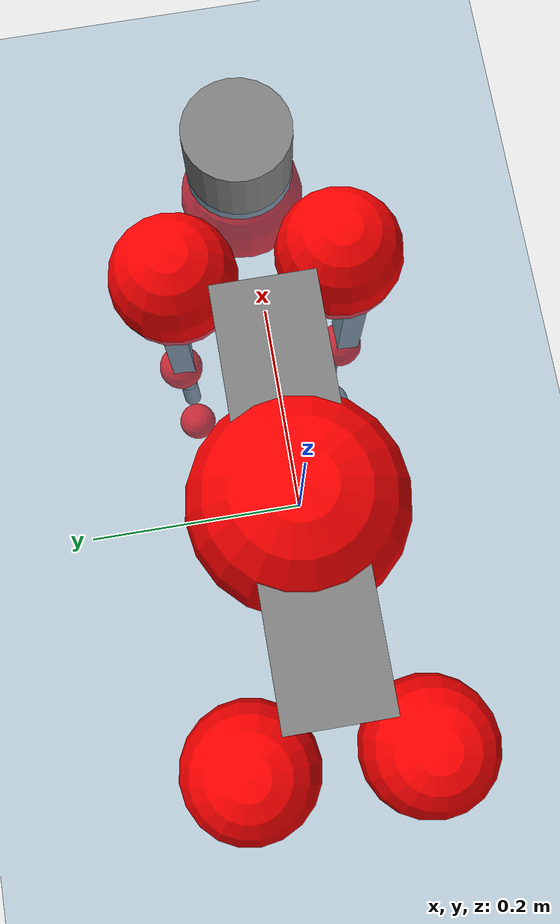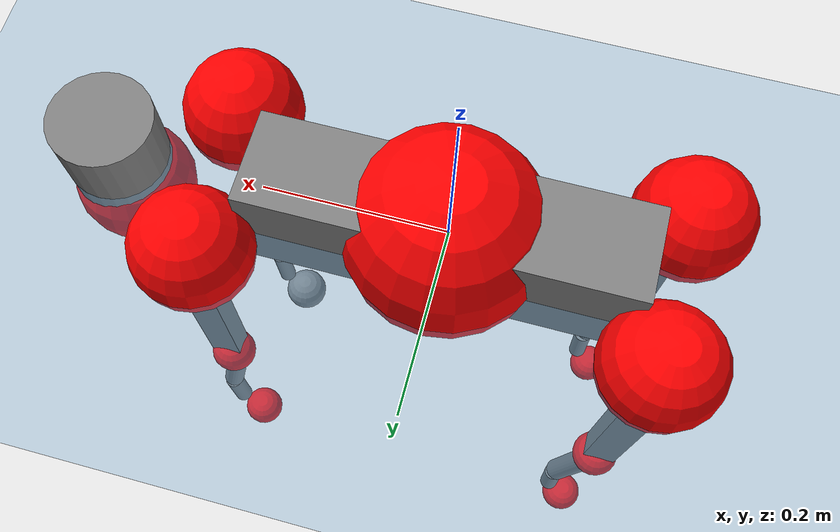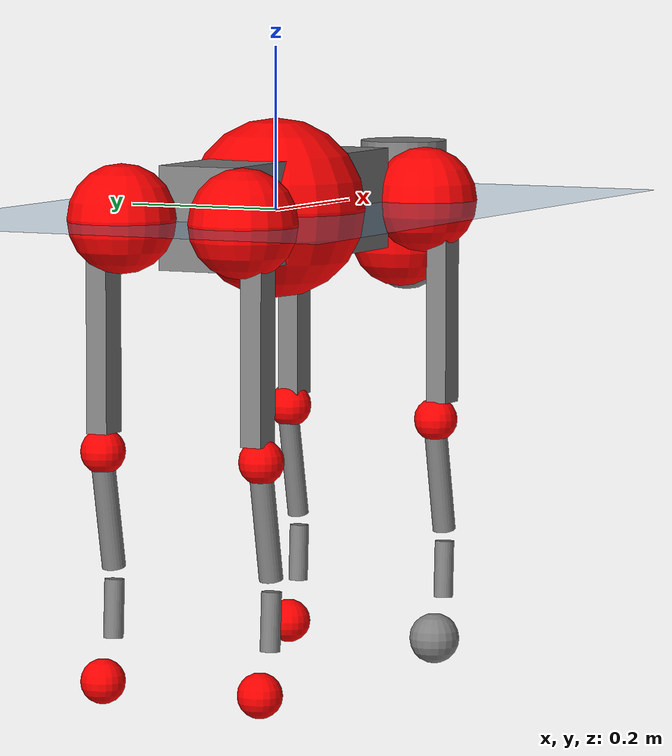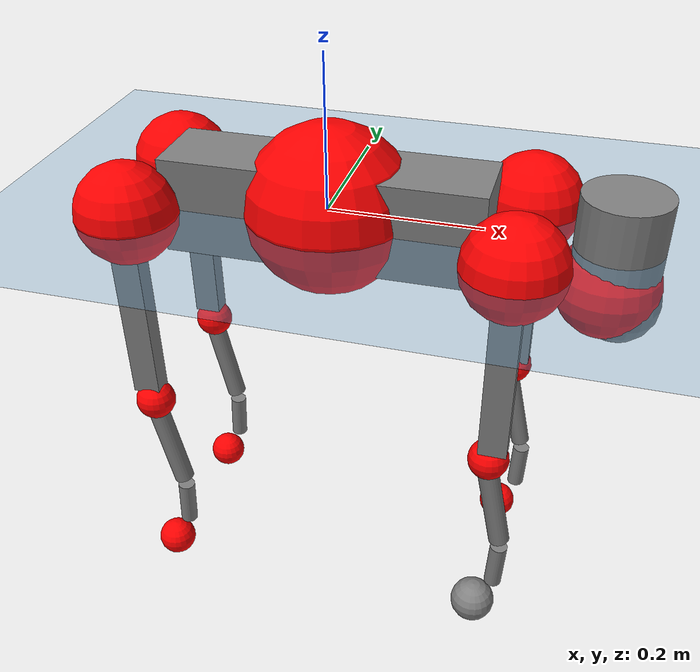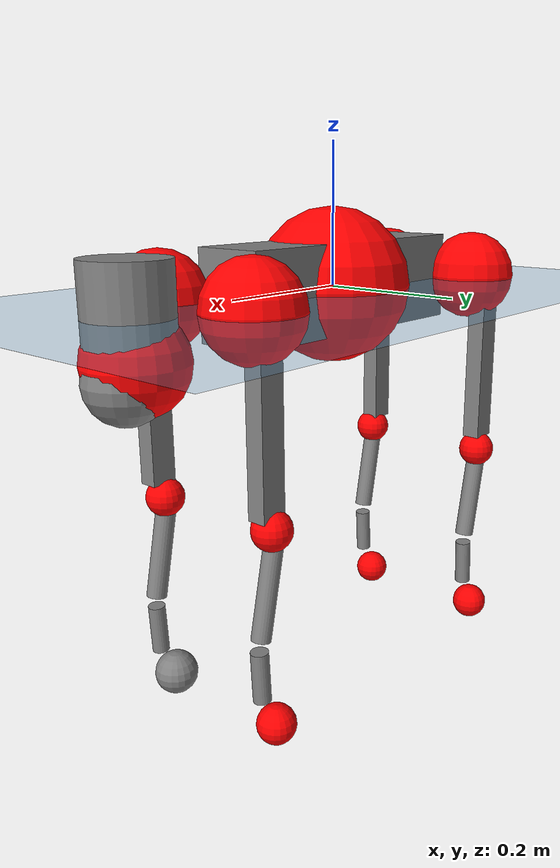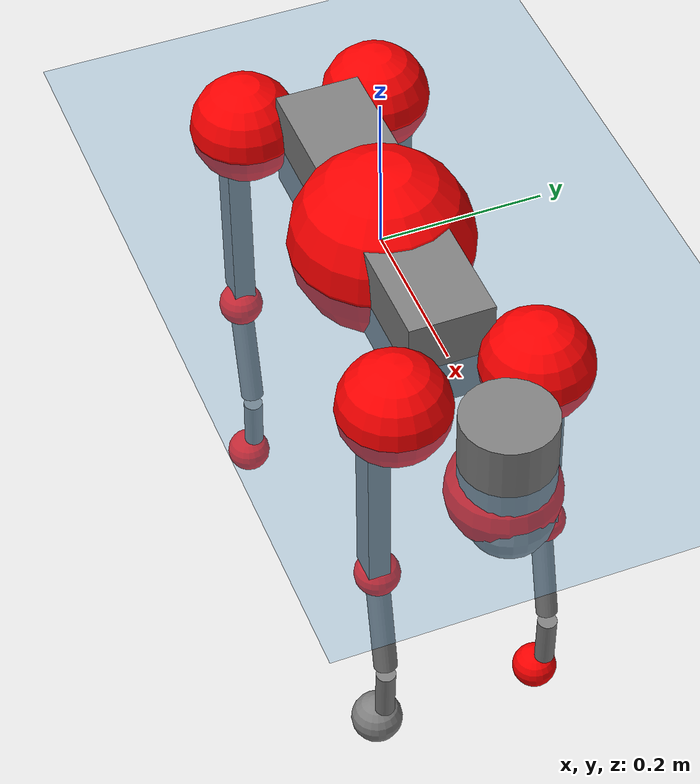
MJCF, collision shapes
<mujoco model="go2">
  <compiler angle="radian" assetdir="assets" balanceinertia="true" inertiafromgeom="false"/>

  <option timestep="0.005" density="1.2" viscosity="2e-05"/>

  <size nkey="1"/>

  <visual>
    <quality shadowsize="8192"/>
    <map shadowclip="0.5"/>
  </visual>

  <default>
    <default class="/">
      <geom contype="0" conaffinity="0" group="1" solref="-1000 -80"/>
      <site size="0.01 0.005 0.005" group="5"/>
      <general forcelimited="true" biastype="affine" gainprm="20" biasprm="0 -20 -0.5"/>
      <default class="go2">
        <joint armature="0.01" damping="0.01" frictionloss="0.2"/>
        <geom condim="1" margin="0.001"/>
        <default class="visual">
          <geom type="mesh" group="2"/>
        </default>
        <default class="collision">
          <geom group="3"/>
          <default class="foot">
            <geom size="0.022 0 0" condim="6" priority="1" friction="0.8 0.02 0.01" solimp="0.015 1 0.022"/>
          </default>
        </default>
        <default class="reward_collision_sphere">
          <geom group="5" rgba="1 0 0 1"/>
        </default>
      </default>
    </default>
  </default>

  <asset>
    <texture type="skybox" colorspace="auto" name="//unnamed_texture_0" builtin="gradient" rgb1="0.95 0.95 0.95" rgb2="0.95 0.95 0.95" width="100" height="600"/>
    <texture type="2d" colorspace="auto" name="texplane" builtin="checker" rgb1="0.345 0.575 0.748" rgb2="0.345 0.575 0.748" markrgb="1 1 1" width="512" height="512"/>
    <material name="MatPlane" class="/" texture="texplane" texuniform="true" texrepeat="2 2" specular="0.9"/>
    <material name="metal" class="/" rgba="0.9 0.95 0.95 1"/>
    <material name="black" class="/" rgba="0 0 0 1"/>
    <material name="white" class="/"/>
    <material name="gray" class="/" rgba="0.671705 0.692426 0.77427 1"/>
    <mesh name="base_0" class="/" file="base_0.obj"/>
    <mesh name="base_1" class="/" file="base_1.obj"/>
    <mesh name="base_2" class="/" file="base_2.obj"/>
    <mesh name="base_3" class="/" file="base_3.obj"/>
    <mesh name="base_4" class="/" file="base_4.obj"/>
    <mesh name="hip_0" class="/" file="hip_0.obj"/>
    <mesh name="hip_1" class="/" file="hip_1.obj"/>
    <mesh name="thigh_0" class="/" file="thigh_0.obj"/>
    <mesh name="thigh_1" class="/" file="thigh_1.obj"/>
    <mesh name="thigh_mirror_0" class="/" file="thigh_mirror_0.obj"/>
    <mesh name="thigh_mirror_1" class="/" file="thigh_mirror_1.obj"/>
    <mesh name="calf_0" class="/" file="calf_0.obj"/>
    <mesh name="calf_1" class="/" file="calf_1.obj"/>
    <mesh name="calf_mirror_0" class="/" file="calf_mirror_0.obj"/>
    <mesh name="calf_mirror_1" class="/" file="calf_mirror_1.obj"/>
    <mesh name="foot" class="/" file="foot.obj"/>
  </asset>

  <worldbody>
    <geom name="floor" class="/" size="100 100 0.125" type="plane" group="0" material="MatPlane"/>
    <light name="toplight_shadow" class="/" pos="0 0 5" dir="0.0990148 0.0990148 -0.990148" type="directional" ambient="0.04 0.04 0.04" diffuse="0.55 0.55 0.55" specular="0.12 0.12 0.12"/>
    <light name="toplight_fill" class="/" pos="0 0 5" dir="0.0990148 0.0990148 -0.990148" type="directional" castshadow="false" ambient="0.04 0.04 0.04" diffuse="0.3 0.3 0.3" specular="0.08 0.08 0.08"/>
    <body name="trunk" childclass="go2" pos="0.00213168 0.000726772 0.00271453" quat="0.999999 0.000338744 -0.00106402 -1.80413e-05">
      <inertial pos="0.0303879 0.0052539 -0.00695725" quat="-0.00157867 0.710455 -0.00256767 0.703737" mass="9.44398" diaginertia="0.321547 0.019295 0.0855236"/>
      <joint name="//unnamed_joint_0" type="free" armature="0" damping="0" frictionloss="0"/>
      <geom name="//unnamed_geom_1" class="visual" material="black" mesh="base_0"/>
      <geom name="//unnamed_geom_2" class="visual" material="black" mesh="base_1"/>
      <geom name="//unnamed_geom_3" class="visual" material="black" mesh="base_2"/>
      <geom name="//unnamed_geom_4" class="visual" material="white" mesh="base_3"/>
      <geom name="//unnamed_geom_5" class="visual" material="gray" mesh="base_4"/>
      <geom name="trunk_1" class="collision" size="0.207261 0.0515123 0.0628064" type="box"/>
      <geom name="trunk_2" class="collision" size="0.0550933 0.049584" pos="0.360098 0 0.0130927" type="cylinder"/>
      <geom name="trunk_3" class="collision" size="0.0517877" pos="0.370206 0 -0.0785563"/>
      <geom name="//unnamed_geom_9" class="reward_collision_sphere" size="0.110187"/>
      <geom name="//unnamed_geom_10" class="reward_collision_sphere" size="0.066112" pos="0.35378 0 -0.0589172"/>
      <site name="imu" pos="0.00409437 -0.0113063 0.0294403" size="0.0110187"/>
      <camera name="track" pos="0 -1.46565 0" quat="0.707107 0.707107 0 0" mode="trackcom"/>
      <camera name="ego_camera" pos="0.394212 0 0.0589172" quat="-0.5 -0.5 0.5 0.5"/>
      <body name="FL_hip" pos="0.246105 0.0337418 -0.00222527" quat="1 -4.39282e-06 -0.000488718 -0.000147061">
        <inertial pos="-0.0122416 0.00223566 -0.00266093" quat="0.496679 0.495179 0.503342 0.504732" mass="0.953994" diaginertia="0.00300754 0.000123014 0.00183738"/>
        <joint name="FL_hip_joint" pos="0 0 0" axis="0.999843 -0.0118534 -0.0131964" range="-1.09502 1.02416" armature="0.00743905" damping="0.0419052" frictionloss="0.196773"/>
        <geom name="//unnamed_geom_11" class="visual" material="metal" mesh="hip_0"/>
        <geom name="//unnamed_geom_12" class="visual" material="gray" mesh="hip_1"/>
        <geom name="//unnamed_geom_13" class="collision" size="0.0506859 0.0220373" pos="0 0.0586261 0" quat="0.707107 0.707107 0 0" type="cylinder"/>
        <geom name="//unnamed_geom_14" class="reward_collision_sphere" size="0.066112" pos="0 0.0512978 0"/>
        <body name="FL_thigh" pos="-0.000361879 0.0658674 -2.03931e-05" quat="0.999998 0.00111247 -0.0016316 -7.72304e-05">
          <inertial pos="-0.00460599 -0.0164937 -0.0484852" quat="0.831109 0.0787702 -0.0240035 0.549979" mass="1.54294" diaginertia="0.0210243 0.00126107 0.00336779"/>
          <joint name="FL_thigh_joint" pos="0 0 0" axis="0.0304275 0.999365 0.0185462" stiffness="0.00745218" range="-1.60388 3.54037" armature="0.0121433" damping="0.00343106" frictionloss="0.277626"/>
          <geom name="//unnamed_geom_15" class="visual" material="metal" mesh="thigh_0"/>
          <geom name="//unnamed_geom_16" class="visual" material="gray" mesh="thigh_1"/>
          <geom name="//unnamed_geom_17" class="collision" size="0.117349 0.0134979 0.0187317" pos="0 0 -0.139437" quat="0.707107 0 0.707107 0" type="box"/>
          <body name="FL_calf" pos="-0.00419474 0.00451877 -0.271658" quat="0.999998 0.000963049 -0.00148643 0.00108162">
            <inertial pos="0.00607258 -0.00109973 -0.186735" quat="0.714318 0.00499449 0.0009861 0.699802" mass="0.321005" diaginertia="0.00488109 0.000311743 0.000202121"/>
            <joint name="FL_calf_joint" pos="0 0 0" axis="-0.062049 0.996945 0.0474307" range="-2.67651 -0.828045" armature="0.0107072" damping="0.032748" frictionloss="0.198376"/>
            <geom name="//unnamed_geom_18" class="visual" material="gray" mesh="calf_0"/>
            <geom name="//unnamed_geom_19" class="visual" material="black" mesh="calf_1"/>
            <geom name="FL_calf0" class="collision" size="0.0132224 0.066112" pos="0.010108 0 -0.0785563" quat="0.994493 0 -0.104807 0" type="cylinder"/>
            <geom name="//unnamed_geom_21" class="collision" size="0.0121205 0.0358107" pos="0.02527 0 -0.193772" quat="0.999688 0 0.0249974 0" type="cylinder"/>
            <geom name="//unnamed_geom_22" class="visual" pos="0 0 -0.278875" quat="1 0 0 0" material="black" mesh="foot"/>
            <geom name="FL_foot" class="foot" size="0.0188667" pos="-0.002527 0 -0.278875"/>
            <geom name="//unnamed_geom_24" class="reward_collision_sphere" size="0.0275467"/>
            <geom name="//unnamed_geom_25" class="reward_collision_sphere" size="0.0275467" pos="-0.002527 0 -0.278875"/>
            <site name="FL_foot" class="foot" pos="-0.002527 0 -0.278875" size="0.0110187"/>
          </body>
        </body>
      </body>
      <body name="FR_hip" pos="0.246571 -0.0329626 -0.00347692" quat="1 -0.000146881 -7.09035e-06 3.71666e-05">
        <inertial pos="-0.0118603 -0.00335595 0.00161764" quat="0.500227 0.505817 0.497579 0.496324" mass="0.866487" diaginertia="0.00278092 0.000120963 0.00179013"/>
        <joint name="FR_hip_joint" pos="0 0 0" axis="0.999999 0.000536161 0.00102313" range="-0.936067 1.09032" armature="0.0136846" damping="0" frictionloss="0.278968"/>
        <geom name="//unnamed_geom_26" class="visual" pos="0 -5.02176e-09 -2.15394e-07" quat="4.63268e-05 1 0 0" material="metal" mesh="hip_0"/>
        <geom name="//unnamed_geom_27" class="visual" pos="0 -8.14088e-09 5.32751e-07" quat="4.63268e-05 1 0 0" material="gray" mesh="hip_1"/>
        <geom name="//unnamed_geom_28" class="collision" size="0.0506859 0.0220373" pos="0 -0.0586261 0" quat="0.707107 0.707107 0 0" type="cylinder"/>
        <geom name="//unnamed_geom_29" class="reward_collision_sphere" size="0.066112" pos="0 -0.0512978 0"/>
        <body name="FR_thigh" pos="-1.32167e-05 -0.0761488 0.00106797" quat="1 0.000557355 0.000326217 0.000366493">
          <inertial pos="-0.0045436 0.0185354 -0.0449853" quat="0.539483 -0.0145887 0.0667439 0.83922" mass="1.73516" diaginertia="0.0205503 0.00125692 0.00351825"/>
          <joint name="FR_thigh_joint" pos="0 0 0" axis="-0.0133352 -0.9998 -0.0149206" stiffness="0.00710683" range="-3.63279 1.5228" armature="0.0109361" damping="0.0240231" frictionloss="0.129325"/>
          <geom name="//unnamed_geom_30" class="visual" material="metal" mesh="thigh_mirror_0"/>
          <geom name="//unnamed_geom_31" class="visual" material="gray" mesh="thigh_mirror_1"/>
          <geom name="//unnamed_geom_32" class="collision" size="0.117349 0.0134979 0.0187317" pos="0 0 -0.139437" quat="0.707107 0 0.707107 0" type="box"/>
          <body name="FR_calf" pos="-0.00523143 0.00616127 -0.278632" quat="1 -0.000778216 0.00042899 -4.05664e-05">
            <inertial pos="0.00820873 -0.00106586 -0.191125" quat="0.706045 -0.00833583 0.00641084 0.708089" mass="0.316502" diaginertia="0.00526203 0.000327654 0.000210741"/>
            <joint name="FR_calf_joint" pos="0 0 0" axis="0.00119487 -0.999943 0.0106269" stiffness="0.0079321" range="0.868905 2.68088" armature="0.0104072" damping="0.0168774" frictionloss="0.293986"/>
            <geom name="//unnamed_geom_33" class="visual" material="gray" mesh="calf_mirror_0"/>
            <geom name="//unnamed_geom_34" class="visual" material="black" mesh="calf_mirror_1"/>
            <geom name="FR_calf0" class="collision" size="0.0143243 0.066112" pos="0.012635 0 -0.0785563" quat="0.995004 0 -0.0998334 0" type="cylinder"/>
            <geom name="//unnamed_geom_36" class="collision" size="0.0121205 0.0358107" pos="0.02527 0 -0.193772" quat="0.999688 0 0.0249974 0" type="cylinder"/>
            <geom name="//unnamed_geom_37" class="visual" pos="0 0 -0.278875" quat="1 0 0 0" material="black" mesh="foot"/>
            <geom name="FR_foot" class="foot" size="0.0316606" pos="-0.002527 0 -0.278875"/>
            <geom name="//unnamed_geom_39" class="reward_collision_sphere" size="0.0275467"/>
            <geom name="//unnamed_geom_40" class="reward_collision_sphere" size="0.0275467" pos="-0.002527 0 -0.278875"/>
            <site name="FR_foot" class="foot" pos="-0.002527 0 -0.278875" size="0.0110187"/>
          </body>
        </body>
      </body>
      <body name="RL_hip" pos="-0.237352 0.0340832 0.000149248" quat="1 -0.000462399 0.000290788 -0.000578855">
        <inertial pos="0.00662206 -0.00428447 0.00215724" quat="0.50556 0.502965 0.489954 0.501379" mass="0.91978" diaginertia="0.00298041 0.000121997 0.00208161"/>
        <joint name="RL_hip_joint" pos="0 0 0" axis="-0.999998 0.000944081 -0.00192791" range="-1.03373 1.21187" armature="0.0142961" damping="0.0133117" frictionloss="0.203882"/>
        <geom name="//unnamed_geom_41" class="visual" pos="3.98733e-10 0 7.81609e-08" quat="4.63268e-05 0 1 0" material="metal" mesh="hip_0"/>
        <geom name="//unnamed_geom_42" class="visual" pos="6.46394e-10 0 6.93176e-08" quat="4.63268e-05 0 1 0" material="gray" mesh="hip_1"/>
        <geom name="//unnamed_geom_43" class="collision" size="0.0506859 0.0220373" pos="0 0.0586261 0" quat="0.707107 0.707107 0 0" type="cylinder"/>
        <geom name="//unnamed_geom_44" class="reward_collision_sphere" size="0.066112" pos="0 0.0512978 0"/>
        <body name="RL_thigh" pos="0.00205946 0.0779776 -0.00167464" quat="1 -2.25337e-06 1.59681e-07 -4.81793e-06">
          <inertial pos="-0.00516546 -0.020462 -0.0450216" quat="0.824485 0.0815614 -0.0178081 0.559692" mass="1.54882" diaginertia="0.0193519 0.0012665 0.0034508"/>
          <joint name="RL_thigh_joint" pos="0 0 0" axis="-0.0158471 0.999713 0.0179469" range="-0.509664 4.48909" armature="0.0113814" damping="0.00988326" frictionloss="0.229424"/>
          <geom name="//unnamed_geom_45" class="visual" material="metal" mesh="thigh_0"/>
          <geom name="//unnamed_geom_46" class="visual" material="gray" mesh="thigh_1"/>
          <geom name="//unnamed_geom_47" class="collision" size="0.117349 0.0134979 0.0187317" pos="0 0 -0.139437" quat="0.707107 0 0.707107 0" type="box"/>
          <body name="RL_calf" pos="0.00212436 0.00258418 -0.279513" quat="1 0.000108936 -7.3735e-06 -8.52728e-05">
            <inertial pos="0.0075524 -0.000692633 -0.186885" quat="0.724004 -0.0318161 -0.0164307 0.688866" mass="0.321492" diaginertia="0.00490287 0.000317372 0.000222805"/>
            <joint name="RL_calf_joint" pos="0 0 0" axis="0.0127102 0.999865 -0.0104537" stiffness="0.00903442" range="-2.70864 -0.83449" armature="0.0128334" damping="0" frictionloss="0.195638"/>
            <geom name="//unnamed_geom_48" class="visual" material="gray" mesh="calf_0"/>
            <geom name="//unnamed_geom_49" class="visual" material="black" mesh="calf_1"/>
            <geom name="RL_calf0" class="collision" size="0.0143243 0.066112" pos="0.012635 0 -0.0785563" quat="0.995004 0 -0.0998334 0" type="cylinder"/>
            <geom name="//unnamed_geom_51" class="collision" size="0.0121205 0.0358107" pos="0.02527 0 -0.193772" quat="0.999688 0 0.0249974 0" type="cylinder"/>
            <geom name="//unnamed_geom_52" class="visual" pos="0 0 -0.278875" quat="1 0 0 0" material="black" mesh="foot"/>
            <geom name="RL_foot" class="foot" size="0.0160081" pos="-0.002527 0 -0.278875"/>
            <geom name="//unnamed_geom_54" class="reward_collision_sphere" size="0.0275467"/>
            <geom name="//unnamed_geom_55" class="reward_collision_sphere" size="0.0275467" pos="-0.002527 0 -0.278875"/>
            <site name="RL_foot" class="foot" pos="-0.002527 0 -0.278875" size="0.0110187"/>
          </body>
        </body>
      </body>
      <body name="RR_hip" pos="-0.24172 -0.0284182 0.000193163" quat="0.999998 0.00180154 0.00019652 5.1527e-05">
        <inertial pos="0.0127485 -0.00217818 -0.00497001" quat="0.499616 0.499193 0.502026 0.49916" mass="0.912626" diaginertia="0.00286513 0.000127168 0.00201796"/>
        <joint name="RR_hip_joint" pos="0 0 0" axis="-0.999999 0.00109697 -0.000834355" stiffness="0.00305121" range="-0.956387 0.905724" armature="0.0116938" damping="0.0249575" frictionloss="0.214825"/>
        <geom name="//unnamed_geom_56" class="visual" pos="-4.17106e-10 -5.02176e-09 2.93555e-07" quat="2.14617e-09 4.63268e-05 4.63268e-05 -1" material="metal" mesh="hip_0"/>
        <geom name="//unnamed_geom_57" class="visual" pos="-6.00952e-10 -8.14088e-09 -4.63434e-07" quat="2.14617e-09 4.63268e-05 4.63268e-05 -1" material="gray" mesh="hip_1"/>
        <geom name="//unnamed_geom_58" class="collision" size="0.0506859 0.0220373" pos="0 -0.0586261 0" quat="0.707107 0.707107 0 0" type="cylinder"/>
        <geom name="//unnamed_geom_59" class="reward_collision_sphere" size="0.066112" pos="0 -0.0512978 0"/>
        <body name="RR_thigh" pos="0.00308593 -0.0694816 -0.00604165" quat="1 -0.000457514 0.000534572 -0.000264034">
          <inertial pos="-0.00761399 0.0145211 -0.0406699" quat="0.55165 -0.020091 0.0845886 0.829532" mass="1.83645" diaginertia="0.0222775 0.00137868 0.00380199"/>
          <joint name="RR_thigh_joint" pos="0 0 0" axis="0.0158566 -0.999791 -0.0129034" range="-4.5083 0.510147" armature="0.0108435" damping="0.000988112" frictionloss="0.217912"/>
          <geom name="//unnamed_geom_60" class="visual" material="metal" mesh="thigh_mirror_0"/>
          <geom name="//unnamed_geom_61" class="visual" material="gray" mesh="thigh_mirror_1"/>
          <geom name="//unnamed_geom_62" class="collision" size="0.117349 0.0134979 0.0187317" pos="0 0 -0.139437" quat="0.707107 0 0.707107 0" type="box"/>
          <body name="RR_calf" pos="0.00570808 -0.0022902 -0.276044" quat="1 -0.000174655 0.00021454 -8.15456e-05">
            <inertial pos="0.00745925 0.000783283 -0.183589" quat="0.706314 0.0079612 -0.0170821 0.707648" mass="0.340429" diaginertia="0.0049975 0.00030003 0.000213525"/>
            <joint name="RR_calf_joint" pos="0 0 0" axis="-0.00331477 -0.999857 0.0165956" range="0.799401 2.70038" armature="0.0147082" damping="0.0168169" frictionloss="0.222477"/>
            <geom name="//unnamed_geom_63" class="visual" material="gray" mesh="calf_mirror_0"/>
            <geom name="//unnamed_geom_64" class="visual" material="black" mesh="calf_mirror_1"/>
            <geom name="RR_calf0" class="collision" size="0.0143243 0.066112" pos="0.012635 0 -0.0785563" quat="0.995004 0 -0.0998334 0" type="cylinder"/>
            <geom name="//unnamed_geom_66" class="collision" size="0.0121205 0.0358107" pos="0.02527 0 -0.193772" quat="0.999688 0 0.0249974 0" type="cylinder"/>
            <geom name="//unnamed_geom_67" class="visual" pos="0 0 -0.278875" quat="1 0 0 0" material="black" mesh="foot"/>
            <geom name="RR_foot" class="foot" size="0.0262646" pos="-0.002527 0 -0.278875"/>
            <geom name="//unnamed_geom_69" class="reward_collision_sphere" size="0.0275467"/>
            <geom name="//unnamed_geom_70" class="reward_collision_sphere" size="0.0275467" pos="-0.002527 0 -0.278875"/>
            <site name="RR_foot" class="foot" pos="-0.002527 0 -0.278875" size="0.0110187"/>
          </body>
        </body>
      </body>
    </body>
  </worldbody>

  <contact>
    <pair class="/" geom1="floor" geom2="FL_foot" name="//unnamed_contact_0"/>
    <pair class="/" geom1="floor" geom2="FR_foot" name="//unnamed_contact_1"/>
    <pair class="/" geom1="floor" geom2="RL_foot" name="//unnamed_contact_2"/>
    <pair class="/" geom1="floor" geom2="RR_foot" name="//unnamed_contact_3"/>
  </contact>

  <actuator>
    <general name="FL_hip" class="/" joint="FL_hip_joint" forcerange="-23.9071 23.9071" gainprm="23.2655" biasprm="0 -23.2655 -0.525604"/>
    <general name="FL_thigh" class="/" joint="FL_thigh_joint" forcerange="-27.4305 27.4305" gainprm="23.2655" biasprm="0 -23.2655 -0.525604"/>
    <general name="FL_calf" class="/" joint="FL_calf_joint" forcerange="-46.6703 46.6703" gainprm="23.2655" biasprm="0 -23.2655 -0.525604"/>
    <general name="FR_hip" class="/" joint="FR_hip_joint" forcerange="-27.9148 27.9148" gainprm="23.2655" biasprm="0 -23.2655 -0.525604"/>
    <general name="FR_thigh" class="/" joint="FR_thigh_joint" forcerange="-25.8479 25.8479" gainprm="23.2655" biasprm="0 -23.2655 -0.525604"/>
    <general name="FR_calf" class="/" joint="FR_calf_joint" forcerange="-59.3376 59.3376" gainprm="23.2655" biasprm="0 -23.2655 -0.525604"/>
    <general name="RL_hip" class="/" joint="RL_hip_joint" forcerange="-26.2963 26.2963" gainprm="23.2655" biasprm="0 -23.2655 -0.525604"/>
    <general name="RL_thigh" class="/" joint="RL_thigh_joint" forcerange="-31.2469 31.2469" gainprm="23.2655" biasprm="0 -23.2655 -0.525604"/>
    <general name="RL_calf" class="/" joint="RL_calf_joint" forcerange="-46.6476 46.6476" gainprm="23.2655" biasprm="0 -23.2655 -0.525604"/>
    <general name="RR_hip" class="/" joint="RR_hip_joint" forcerange="-25.1248 25.1248" gainprm="23.2655" biasprm="0 -23.2655 -0.525604"/>
    <general name="RR_thigh" class="/" joint="RR_thigh_joint" forcerange="-32.5322 32.5322" gainprm="23.2655" biasprm="0 -23.2655 -0.525604"/>
    <general name="RR_calf" class="/" joint="RR_calf_joint" forcerange="-41.6346 41.6346" gainprm="23.2655" biasprm="0 -23.2655 -0.525604"/>
  </actuator>

  <sensor>
    <gyro site="imu" name="imu_angular_velocity"/>
    <velocimeter site="imu" name="imu_linear_velocity"/>
    <framelinvel objtype="site" objname="FL_foot" name="FL_foot_global_linear_velocity"/>
    <framelinvel objtype="site" objname="FR_foot" name="FR_foot_global_linear_velocity"/>
    <framelinvel objtype="site" objname="RL_foot" name="RL_foot_global_linear_velocity"/>
    <framelinvel objtype="site" objname="RR_foot" name="RR_foot_global_linear_velocity"/>
  </sensor>

  <keyframe>
    <key name="home" qpos="0 0 0.325 1 0 0 0 0.1 0.8 -1.5 -0.1 -0.8 1.5 -0.1 0.8 -1.5 0.1 -0.8 1.5"/>
  </keyframe>
</mujoco>
